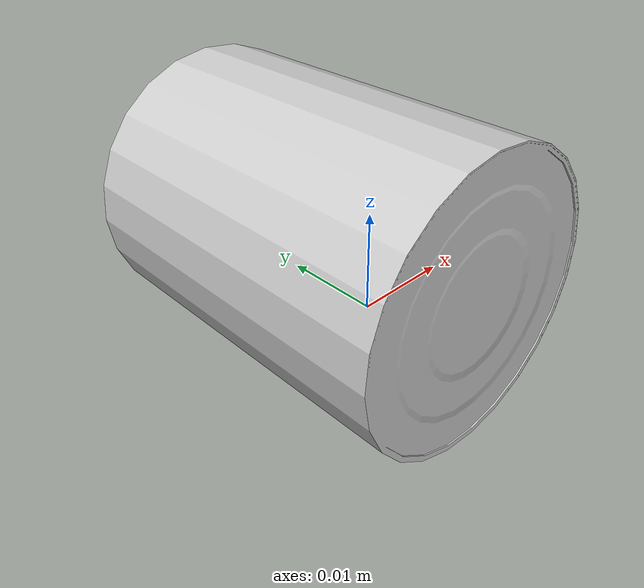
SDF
<?xml version="1.0" ?>
<sdf version="1.4">
  <model name="z_milk">
    <link name="z_milk_link">
      <inertial>
        <pose>-0.00 0.0 -0.005 0 0 0</pose>
        <mass>0.8</mass>
        <inertia>
          <ixx>0.001667</ixx>
	  <ixy>0.0</ixy>
	  <ixz>0.0</ixz>
	  <iyy>0.001667</iyy>
	  <iyz>0.0</iyz>
	  <izz>0.001667</izz>
	</inertia>
      </inertial>

      <visual name="z_milk_visual">
        <pose>0 0 +0.01 -1.57079632679489 0 0 </pose>
        <material>
	  <lighting>1</lighting>
	  <ambient>0.2 0.2 0.2 1</ambient>
	  <diffuse>0.8 0.8 0.8 1</diffuse>
	  <specular>0.2 0.2 0.2 1</specular>
	  <emissive>0.85 0.85 0.85 1</emissive>
          <script>
            <uri>model://z_milk/materials/scripts</uri>
            <uri>model://z_milk/materials/textures</uri>
            <name>Z_milk/Image</name>
          </script>
        </material>
        <geometry>
          <mesh>
            <uri>model://z_milk/meshes/z_milk.dae</uri>
	    <scale>0.4 0.4 0.4</scale>
          </mesh>
        </geometry>
      </visual>

      <collision name="z_milk_collision">
        <pose>-0.0 0.0 +0.02 0.0 0.0 0.0</pose>
        <geometry>
	  <cylinder>
	    <radius>0.012</radius>
	    <length>0.04</length>
	  </cylinder>
        </geometry>
        <max_contacts>10</max_contacts>
        <surface>
          <contact>
	    <ode>
	      <max_vel>0.000</max_vel>
            </ode>
          </contact>
          <bounce/>
          <friction>
            <torsional>
              <ode/>
            </torsional>
            <ode>
              <mu>1</mu>
              <mu2>1</mu2>
            </ode>
          </friction>
        </surface>
      </collision>
      <self_collide>0</self_collide>
      <kinematic>0</kinematic>
    </link>
  </model>
</sdf>
